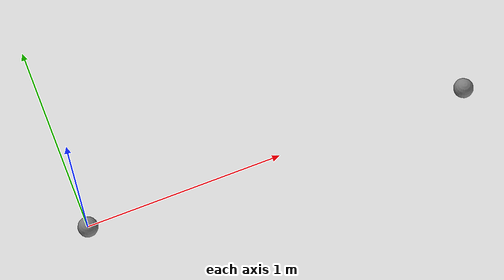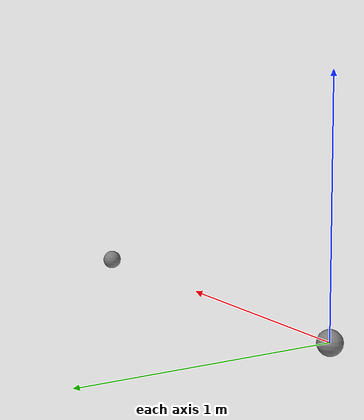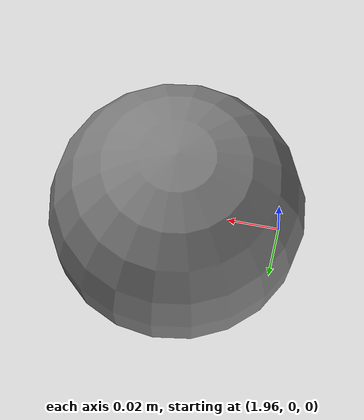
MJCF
<mujoco model="free-two-bodies">
  <compiler angle="radian"/>
  <option gravity="0 0 0" timestep="0.001" integrator="RK4"/>
  <worldbody>
    <body name="a" pos="0 0 0">
      <freejoint name="free_a"/>
      <inertial pos="0 0 0" mass="1.0" diaginertia="0.01 0.01 0.01"/>
      <geom type="sphere" size="0.05" contype="0" conaffinity="0"/>
    </body>
    <body name="b" pos="2 0 0">
      <freejoint name="free_b"/>
      <inertial pos="0 0 0" mass="3.0" diaginertia="0.05 0.05 0.05"/>
      <geom type="sphere" size="0.05" contype="0" conaffinity="0"/>
    </body>
  </worldbody>
</mujoco>
